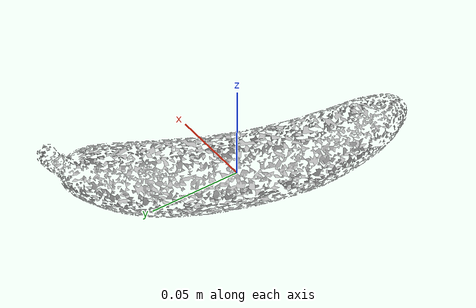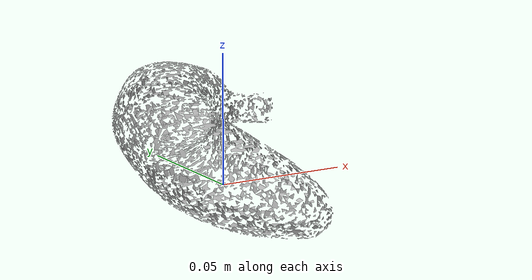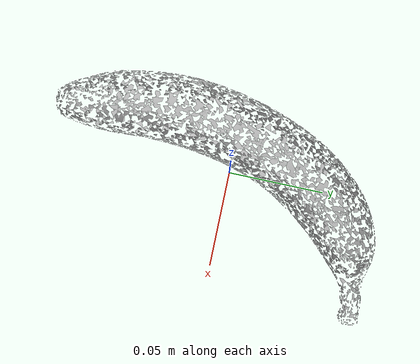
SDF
<?xml version='1.0'?>
<sdf version="1.4">
  <model name="banana">
    <static>false</static>
    <link name="link">
      <inertial>
        <pose>-0.009936102440002158 0.004072679186328214 0.01712688923116843 -1.5542738497302564 -1.3696969889633919 -0.33629254421581684</pose>
        <mass>0.00017153252062943915</mass>
        <inertia>
          <ixx>4.271994641930724e-07</ixx>
          <ixy>-1.7823337363110867e-23</ixy>
          <ixz>5.562450029839042e-23</ixz>
          <iyy>4.1076640307383183e-07</iyy>
          <iyz>-4.672131936928927e-23</iyz>
          <izz>4.075387802083207e-08</izz>
        </inertia>
      </inertial>
      <collision name="collision">
        <geometry>
          <mesh>
            <!-- Use a downsampled mesh for collisions -->
            <uri>model://011_banana/downsampled.obj</uri>
	        </mesh>
        </geometry>
        <surface>
          <friction>
            <ode>
              <mu>80</mu>
              <mu2>60</mu2>
              <kp>100</kp>
              <kd>100</kd>
            </ode>
          </friction>
        </surface>
      </collision>
      <visual name="visual">
        <geometry>
          <mesh>
            <uri>model://011_banana/google_16k/textured.obj</uri>
	        </mesh>
        </geometry>
        <material>
          <script>
            <uri>model://011_banana/banana.material</uri>
            <name>banana</name>
          </script>
        </material>
      </visual>
    </link>
  </model>
</sdf>
